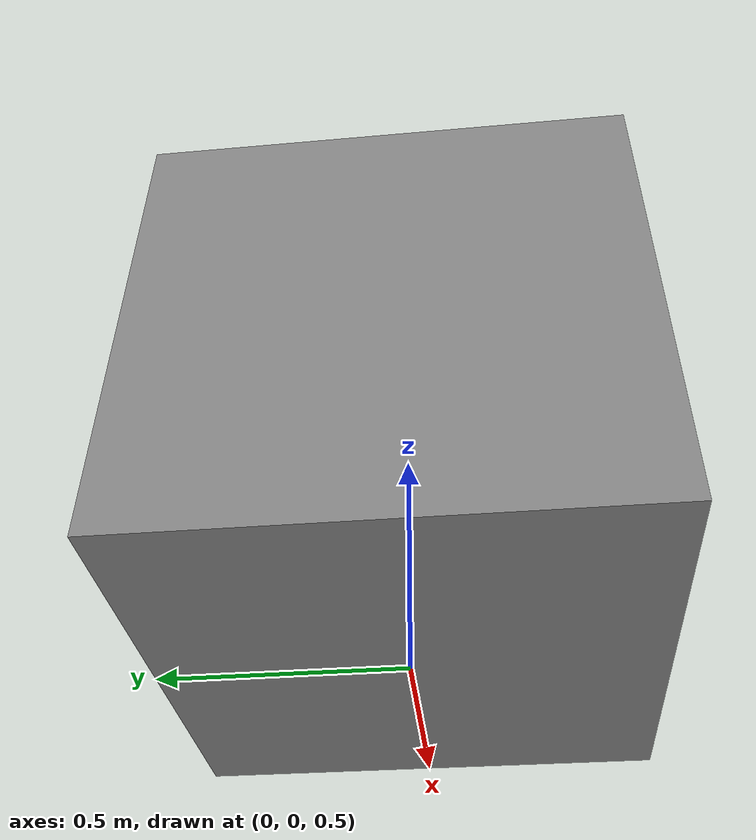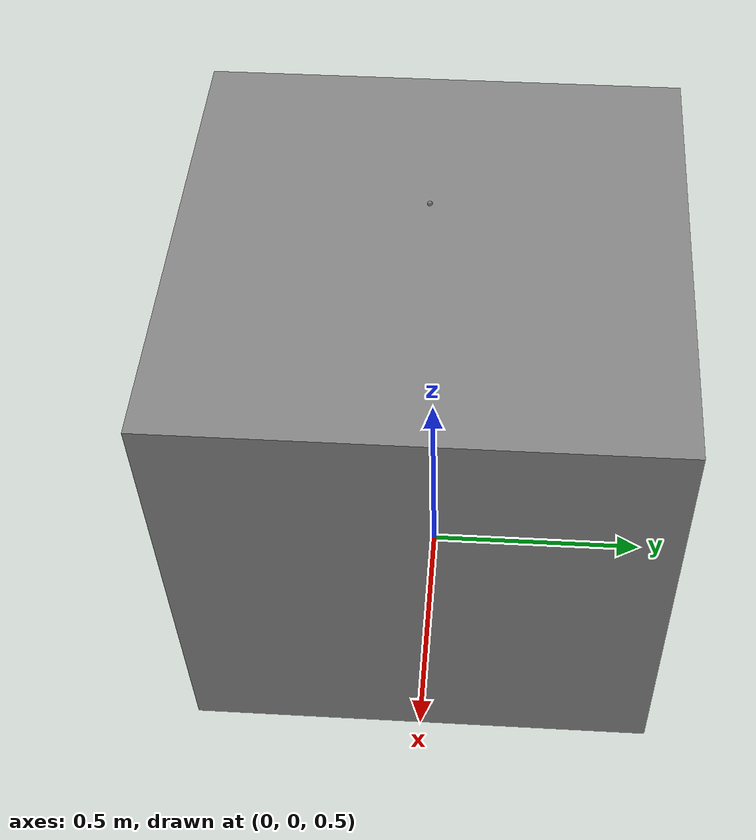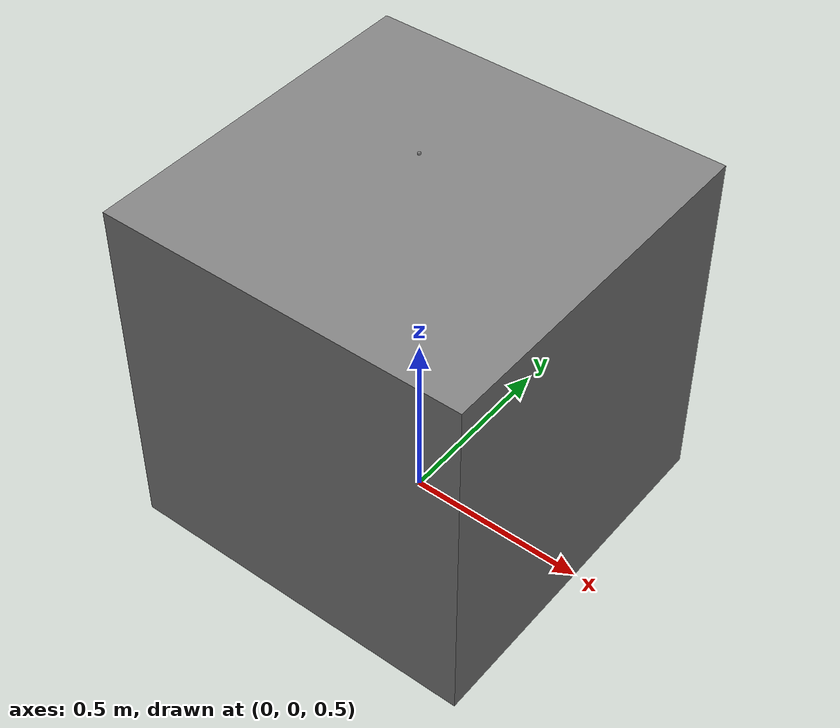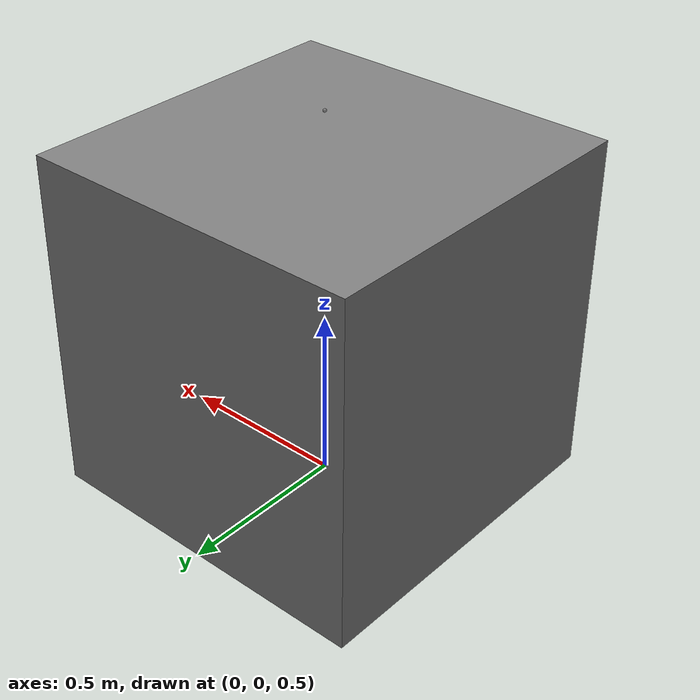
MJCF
<mujoco model="rangefinder-self">
  <option gravity="0 0 0" timestep="0.001"/>
  <compiler angle="radian"/>
  <worldbody>
    <body name="sensor_body" pos="0 0 1">
      <geom name="own_box" type="box" size="0.5 0.5 0.5"
            contype="0" conaffinity="0"/>
      <site name="eye" pos="0 0 0.6" euler="0 0 0"/>
    </body>
  </worldbody>
  <sensor>
    <rangefinder name="self_ray" site="eye"/>
  </sensor>
</mujoco>
